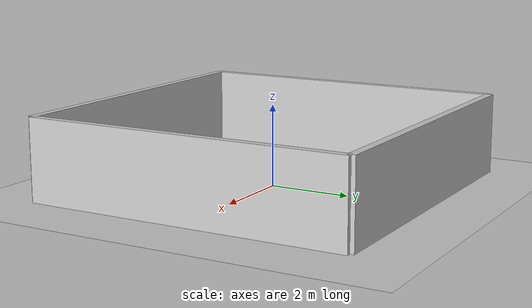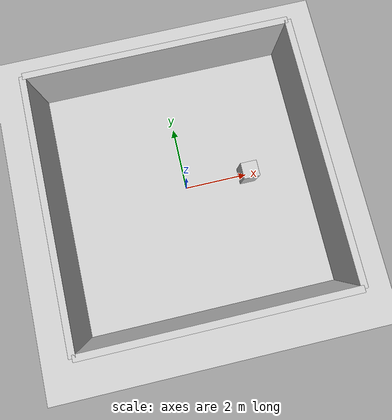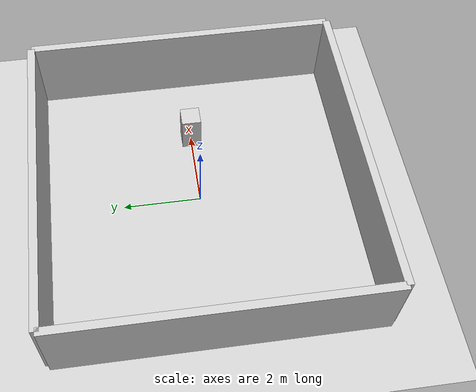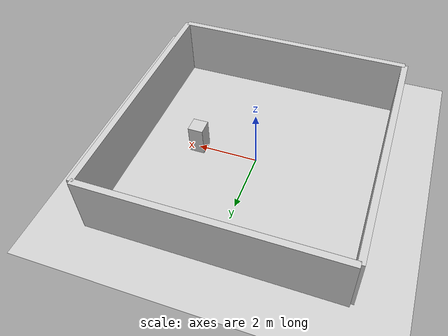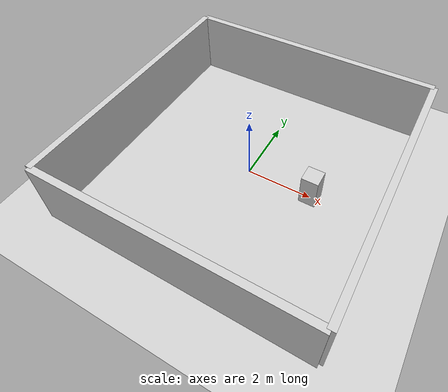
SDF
<?xml version="1.0"?>
<sdf version="1.6">
    <world name="room">

        <scene>
            <ambient>0.4 0.4 0.4 1</ambient>
            <background>0.7 0.7 0.7 1</background>
            <shadows>true</shadows>
        </scene>

        <plugin filename="libignition-gazebo-physics-system.so"
            name="ignition::gazebo::systems::Physics" />
        <plugin filename="libignition-gazebo-user-commands-system.so"
            name="ignition::gazebo::systems::UserCommands" />
        <plugin filename="libignition-gazebo-scene-broadcaster-system.so"
            name="ignition::gazebo::systems::SceneBroadcaster" />
        <plugin filename="libignition-gazebo-sensors-system.so"
            name="ignition::gazebo::systems::Sensors">
            <render_engine>ogre</render_engine>
        </plugin>

        <light type="directional" name="sun">
            <cast_shadows>true</cast_shadows>
            <pose>0 0 10 0 0 0</pose>
            <diffuse>0.8 0.8 0.8 1</diffuse>
            <specular>0.2 0.2 0.2 1</specular>
            <direction>-0.5 0.1 -0.9</direction>
        </light>

        <!-- Ground plane -->
        <model name="ground_plane">
            <static>true</static>
            <link name="link">
                <collision name="collision">
                    <geometry>
                        <plane>
                            <normal>0 0 1</normal>
                        </plane>
                    </geometry>
                </collision>
                <visual name="visual">
                    <geometry>
                        <plane>
                            <normal>0 0 1</normal>
                            <size>20 20</size>
                        </plane>
                    </geometry>
                    <material>
                        <ambient>0.8 0.8 0.8 1</ambient>
                        <diffuse>0.8 0.8 0.8 1</diffuse>
                        <specular>0.1 0.1 0.1 1</specular>
                    </material>
                </visual>
            </link>
        </model>

        <!-- North wall -->
        <model name="wall_north">
            <static>true</static>
            <pose>4 0 1 0 0 0</pose>
            <link name="link">
                <collision name="collision">
                    <geometry>
                        <box>
                            <size>0.2 8 2</size>
                        </box>
                    </geometry>
                </collision>
                <visual name="visual">
                    <geometry>
                        <box>
                            <size>0.2 8 2</size>
                        </box>
                    </geometry>
                    <material>
                        <ambient>0.8 0.8 0.8 1</ambient>
                        <diffuse>0.8 0.8 0.8 1</diffuse>
                        <specular>0.1 0.1 0.1 1</specular>
                    </material>
                </visual>
            </link>
        </model>

        <!-- South wall -->
        <model name="wall_south">
            <static>true</static>
            <pose>-4 0 1 0 0 0</pose>
            <link name="link">
                <collision name="collision">
                    <geometry>
                        <box>
                            <size>0.2 8 2</size>
                        </box>
                    </geometry>
                </collision>
                <visual name="visual">
                    <geometry>
                        <box>
                            <size>0.2 8 2</size>
                        </box>
                    </geometry>
                    <material>
                        <ambient>0.8 0.8 0.8 1</ambient>
                        <diffuse>0.8 0.8 0.8 1</diffuse>
                        <specular>0.1 0.1 0.1 1</specular>
                    </material>
                </visual>
            </link>
        </model>

        <!-- East wall -->
        <model name="wall_east">
            <static>true</static>
            <pose>0 4 1 0 0 0</pose>
            <link name="link">
                <collision name="collision">
                    <geometry>
                        <box>
                            <size>8 0.2 2</size>
                        </box>
                    </geometry>
                </collision>
                <visual name="visual">
                    <geometry>
                        <box>
                            <size>8 0.2 2</size>
                        </box>
                    </geometry>
                    <material>
                        <ambient>0.8 0.8 0.8 1</ambient>
                        <diffuse>0.8 0.8 0.8 1</diffuse>
                        <specular>0.1 0.1 0.1 1</specular>
                    </material>
                </visual>
            </link>
        </model>

        <!-- West wall -->
        <model name="wall_west">
            <static>true</static>
            <pose>0 -4 1 0 0 0</pose>
            <link name="link">
                <collision name="collision">
                    <geometry>
                        <box>
                            <size>8 0.2 2</size>
                        </box>
                    </geometry>
                </collision>
                <visual name="visual">
                    <geometry>
                        <box>
                            <size>8 0.2 2</size>
                        </box>
                    </geometry>
                    <material>
                        <ambient>0.8 0.8 0.8 1</ambient>
                        <diffuse>0.8 0.8 0.8 1</diffuse>
                        <specular>0.1 0.1 0.1 1</specular>
                    </material>
                </visual>
            </link>
        </model>

        <!-- A box obstacle in the room -->
        <model name="box_obstacle">
            <static>true</static>
            <pose>2 0 0.5 0 0 0</pose>
            <link name="link">
                <collision name="collision">
                    <geometry>
                        <box>
                            <size>0.5 0.5 1</size>
                        </box>
                    </geometry>
                </collision>
                <visual name="visual">
                    <geometry>
                        <box>
                            <size>0.5 0.5 1</size>
                        </box>
                    </geometry>
                    <material>
                        <ambient>0.8 0.8 0.8 1</ambient>
                        <diffuse>0.8 0.8 0.8 1</diffuse>
                        <specular>0.1 0.1 0.1 1</specular>
                    </material>
                </visual>
            </link>
        </model>

    </world>
</sdf>
